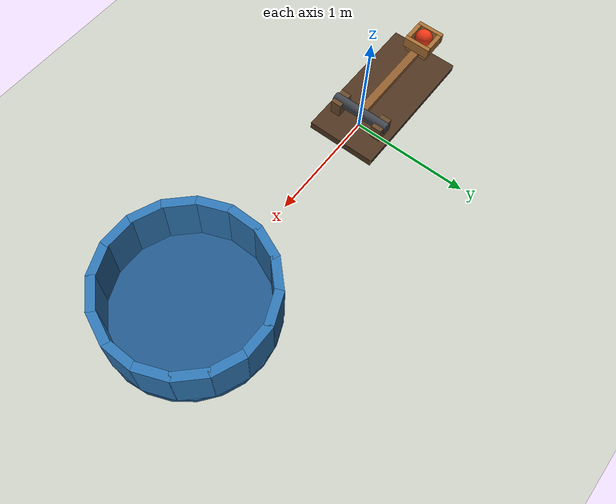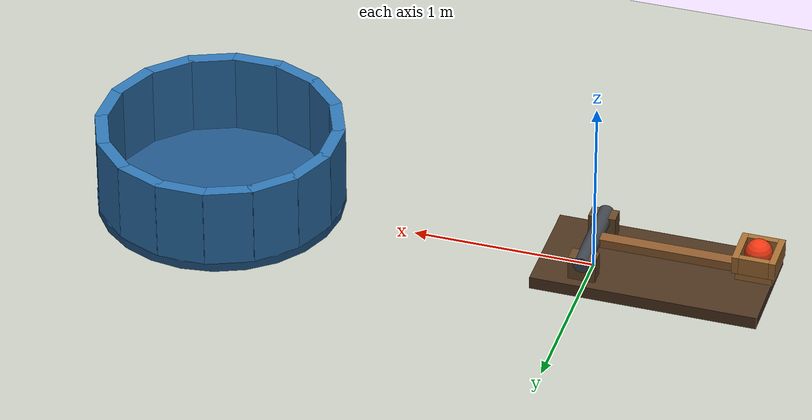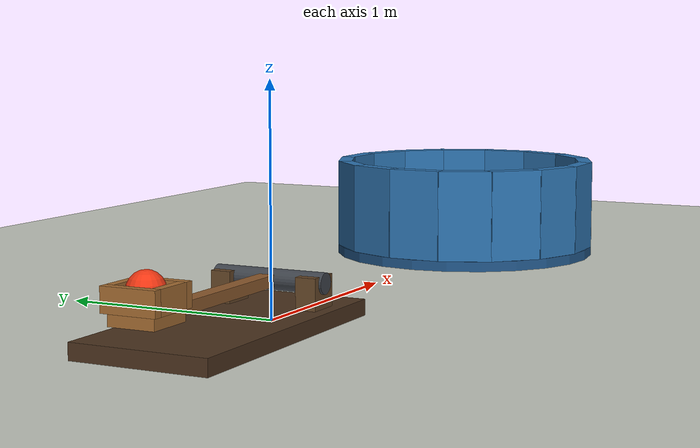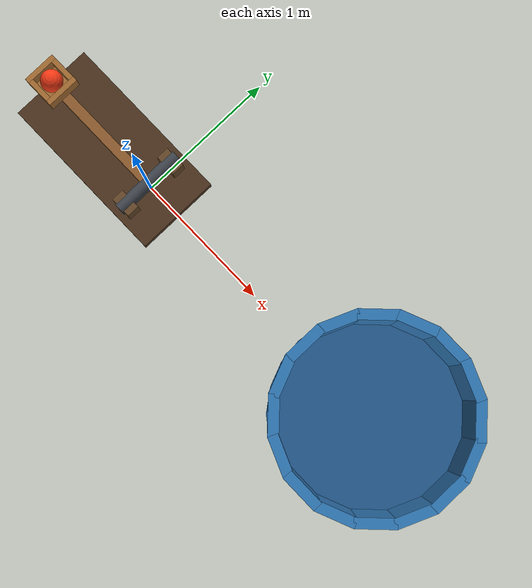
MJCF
<mujoco model="spring_catapult_into_bucket">
  <compiler angle="radian"/>
  <option timestep="0.002" gravity="0 0 -9.81" integrator="implicitfast" iterations="80"/>

  <visual>
    <headlight ambient="0.35 0.35 0.35" diffuse="0.65 0.65 0.65" specular="0.2 0.2 0.2"/>
  </visual>

  <worldbody>
    <light name="scene_light" pos="0 -3 5" dir="0.2 0.3 -1"/>
    <camera name="overview" pos="0.65 -5 3" xyaxes="1 0 0 0 0.47 0.883"/>

    <geom name="floor" type="plane" size="8 6 0.1" friction="0.9 0.01 0.02" rgba="0.78 0.80 0.76 1"/>

    <body name="catapult_frame" pos="0 0 0">
      <geom name="catapult_base" type="box" pos="-0.35 0 0.035" size="0.62 0.30 0.035" contype="0" conaffinity="0" rgba="0.30 0.20 0.12 1"/>
      <geom name="catapult_support_left" type="box" pos="0 0.20 0.12" size="0.075 0.045 0.085" contype="0" conaffinity="0" rgba="0.40 0.28 0.16 1"/>
      <geom name="catapult_support_right" type="box" pos="0 -0.20 0.12" size="0.075 0.045 0.085" contype="0" conaffinity="0" rgba="0.40 0.28 0.16 1"/>
      <geom name="catapult_axle" type="cylinder" pos="0 0 0.175" quat="0.70710678 0.70710678 0 0" size="0.045 0.255" contype="0" conaffinity="0" rgba="0.25 0.27 0.30 1"/>

      <body name="catapult_arm" pos="0 0 0.175">
        <inertial pos="-0.45 0 0" mass="0.6" diaginertia="0.002 0.06 0.06"/>
        <joint name="catapult_hinge" type="hinge" axis="0 1 0" limited="true" range="0 0.70" stiffness="7.65" springref="1.4" damping="0.02" solreflimit="0.004 1" solimplimit="0.99 0.99 0.001"/>

        <geom name="catapult_beam" type="box" pos="-0.45 0 0" size="0.45 0.035 0.025" contype="0" conaffinity="0" rgba="0.56 0.36 0.18 1"/>
        <geom name="catapult_tray" type="box" pos="-0.9 0 0" size="0.10 0.10 0.025" priority="1" friction="0.6 0.005 0.002" solref="0.004 1" solimp="0.95 0.99 0.001" rgba="0.65 0.43 0.20 1"/>
        <geom name="catapult_cup_back" type="box" pos="-1.0 0 0.075" size="0.018 0.118 0.05" priority="1" friction="0.6 0.005 0.002" solref="0.004 1" solimp="0.95 0.99 0.001" rgba="0.65 0.43 0.20 1"/>
        <geom name="catapult_cup_front" type="box" pos="-0.8 0 0.075" size="0.018 0.118 0.05" priority="1" friction="0.6 0.005 0.002" solref="0.004 1" solimp="0.95 0.99 0.001" rgba="0.65 0.43 0.20 1"/>
        <geom name="catapult_cup_left" type="box" pos="-0.9 0.1 0.075" size="0.082 0.018 0.05" priority="1" friction="0.6 0.005 0.002" solref="0.004 1" solimp="0.95 0.99 0.001" rgba="0.65 0.43 0.20 1"/>
        <geom name="catapult_cup_right" type="box" pos="-0.9 -0.1 0.075" size="0.082 0.018 0.05" priority="1" friction="0.6 0.005 0.002" solref="0.004 1" solimp="0.95 0.99 0.001" rgba="0.65 0.43 0.20 1"/>
      </body>
    </body>

    <body name="ball" pos="-0.9 0 0.275">
      <freejoint name="ball_free"/>
      <geom name="ball" type="sphere" size="0.075" mass="0.1" friction="0.5 0.005 0.002" solref="0.006 1" solimp="0.95 0.99 0.001" rgba="0.95 0.22 0.08 1"/>
    </body>

    <!-- The bucket interior spans z=0.05 to z=0.50 and is centred at (2.1, 0, 0.275). -->
    <body name="bucket" pos="2.1 0 0.275">
      <geom name="bucket_bottom" type="cylinder" pos="0 0 -0.25" size="0.68 0.025" priority="1" friction="0.9 0.01 0.02" solref="0.012 1" solimp="0.95 0.99 0.001" rgba="0.13 0.34 0.54 1"/>
      <geom name="bucket_wall_00" type="box" pos="0.635 0 0" euler="0 0 0" size="0.035 0.135 0.225" priority="1" friction="0.9 0.01 0.02" solref="0.012 1" rgba="0.18 0.46 0.70 1"/>
      <geom name="bucket_wall_01" type="box" pos="0.58666350 0.24300398 0" euler="0 0 0.39269908" size="0.035 0.135 0.225" priority="1" friction="0.9 0.01 0.02" solref="0.012 1" rgba="0.18 0.46 0.70 1"/>
      <geom name="bucket_wall_02" type="box" pos="0.44901281 0.44901281 0" euler="0 0 0.78539816" size="0.035 0.135 0.225" priority="1" friction="0.9 0.01 0.02" solref="0.012 1" rgba="0.18 0.46 0.70 1"/>
      <geom name="bucket_wall_03" type="box" pos="0.24300398 0.58666350 0" euler="0 0 1.17809725" size="0.035 0.135 0.225" priority="1" friction="0.9 0.01 0.02" solref="0.012 1" rgba="0.18 0.46 0.70 1"/>
      <geom name="bucket_wall_04" type="box" pos="0 0.635 0" euler="0 0 1.57079633" size="0.035 0.135 0.225" priority="1" friction="0.9 0.01 0.02" solref="0.012 1" rgba="0.18 0.46 0.70 1"/>
      <geom name="bucket_wall_05" type="box" pos="-0.24300398 0.58666350 0" euler="0 0 1.96349541" size="0.035 0.135 0.225" priority="1" friction="0.9 0.01 0.02" solref="0.012 1" rgba="0.18 0.46 0.70 1"/>
      <geom name="bucket_wall_06" type="box" pos="-0.44901281 0.44901281 0" euler="0 0 2.35619449" size="0.035 0.135 0.225" priority="1" friction="0.9 0.01 0.02" solref="0.012 1" rgba="0.18 0.46 0.70 1"/>
      <geom name="bucket_wall_07" type="box" pos="-0.58666350 0.24300398 0" euler="0 0 2.74889357" size="0.035 0.135 0.225" priority="1" friction="0.9 0.01 0.02" solref="0.012 1" rgba="0.18 0.46 0.70 1"/>
      <geom name="bucket_wall_08" type="box" pos="-0.635 0 0" euler="0 0 3.14159265" size="0.035 0.135 0.225" priority="1" friction="0.9 0.01 0.02" solref="0.012 1" rgba="0.18 0.46 0.70 1"/>
      <geom name="bucket_wall_09" type="box" pos="-0.58666350 -0.24300398 0" euler="0 0 3.53429174" size="0.035 0.135 0.225" priority="1" friction="0.9 0.01 0.02" solref="0.012 1" rgba="0.18 0.46 0.70 1"/>
      <geom name="bucket_wall_10" type="box" pos="-0.44901281 -0.44901281 0" euler="0 0 3.92699082" size="0.035 0.135 0.225" priority="1" friction="0.9 0.01 0.02" solref="0.012 1" rgba="0.18 0.46 0.70 1"/>
      <geom name="bucket_wall_11" type="box" pos="-0.24300398 -0.58666350 0" euler="0 0 4.31968990" size="0.035 0.135 0.225" priority="1" friction="0.9 0.01 0.02" solref="0.012 1" rgba="0.18 0.46 0.70 1"/>
      <geom name="bucket_wall_12" type="box" pos="0 -0.635 0" euler="0 0 4.71238898" size="0.035 0.135 0.225" priority="1" friction="0.9 0.01 0.02" solref="0.012 1" rgba="0.18 0.46 0.70 1"/>
      <geom name="bucket_wall_13" type="box" pos="0.24300398 -0.58666350 0" euler="0 0 5.10508806" size="0.035 0.135 0.225" priority="1" friction="0.9 0.01 0.02" solref="0.012 1" rgba="0.18 0.46 0.70 1"/>
      <geom name="bucket_wall_14" type="box" pos="0.44901281 -0.44901281 0" euler="0 0 5.49778714" size="0.035 0.135 0.225" priority="1" friction="0.9 0.01 0.02" solref="0.012 1" rgba="0.18 0.46 0.70 1"/>
      <geom name="bucket_wall_15" type="box" pos="0.58666350 -0.24300398 0" euler="0 0 5.89048623" size="0.035 0.135 0.225" priority="1" friction="0.9 0.01 0.02" solref="0.012 1" rgba="0.18 0.46 0.70 1"/>
    </body>
  </worldbody>

  <keyframe>
    <key name="start" qpos="0 -0.9 0 0.275 1 0 0 0" qvel="0 0 0 0 0 0 0"/>
  </keyframe>
</mujoco>
